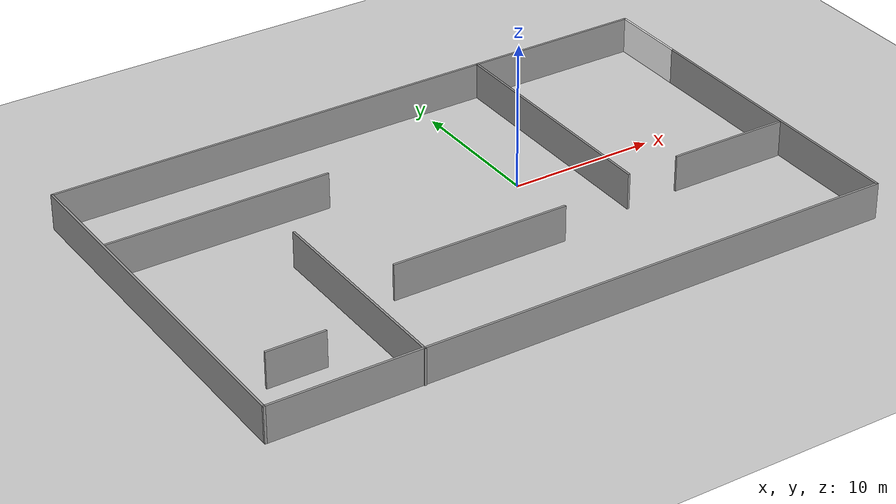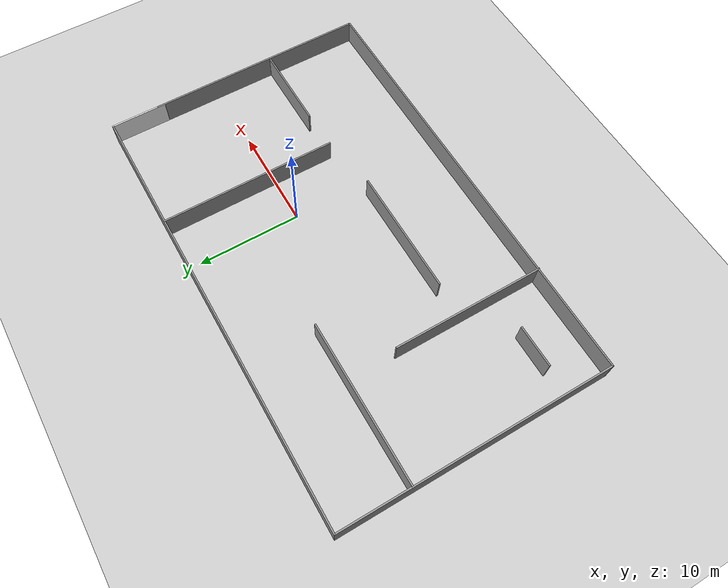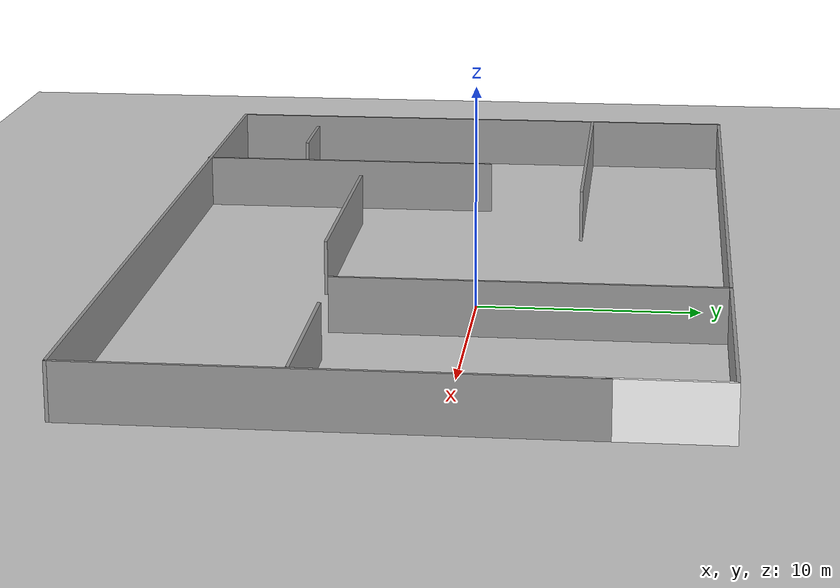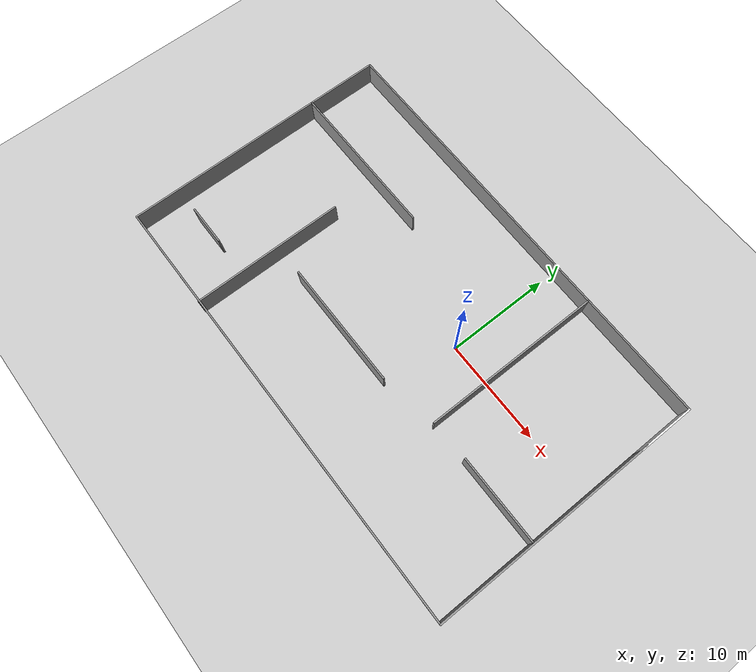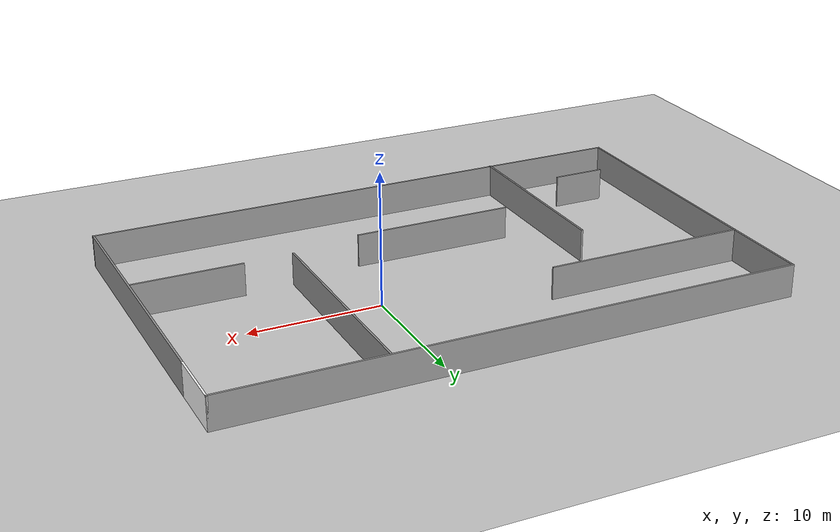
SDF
<sdf version="1.7">
 <world name="default">
  <model name="ground_plane">
   <static>1</static>
   <link name="link">
    <collision name="collision">
     <geometry><plane><normal>0 0 1</normal><size>100 100</size></plane></geometry>
     <surface><friction><ode><mu>100</mu><mu2>50</mu2></ode></friction></surface>
    </collision>
    <visual name="visual">
     <cast_shadows>0</cast_shadows>
     <geometry><plane><normal>0 0 1</normal><size>100 100</size></plane></geometry>
     <material>
      <script><uri>file://media/materials/scripts/gazebo.material</uri><name>Gazebo/Grey</name></script>
     </material>
    </visual>
   </link>
  </model>
  <light name="sun" type="directional">
   <pose>0 0 10 0 -0 0</pose>
   <diffuse>0.8 0.8 0.8 1</diffuse>
   <specular>0.2 0.2 0.2 1</specular>
   <attenuation>
    <range>1000</range>
    <constant>0.9</constant>
    <linear>0.01</linear>
    <quadratic>0.001</quadratic>
   </attenuation>
   <direction>-0.5 0.1 -0.9</direction>
   <spot><inner_angle>0</inner_angle><outer_angle>0</outer_angle><falloff>0</falloff></spot>
  </light>
  <scene><shadows>0</shadows><ambient>0.4 0.4 0.4 1</ambient><background>0.7 0.7 0.7 1</background></scene>
  <physics type="ode">
   <real_time_update_rate>1000</real_time_update_rate>
   <max_step_size>0.001</max_step_size>
   <real_time_factor>1</real_time_factor>
   <ode>
    <solver>
     <type>quick</type>
     <iters>150</iters>
     <precon_iters>0</precon_iters>
     <sor>1.4</sor>
     <use_dynamic_moi_rescaling>1</use_dynamic_moi_rescaling>
    </solver>
    <constraints>
     <cfm>1e-05</cfm>
     <erp>0.2</erp>
     <contact_max_correcting_vel>2000</contact_max_correcting_vel>
     <contact_surface_layer>0.01</contact_surface_layer>
    </constraints>
   </ode>
  </physics>
  <model name="amr_mini_world">
   <static>1</static>
   <frame name="world::__model__" attached_to="world::Wall_10">
    <pose relative_to="__model__">-5.16979 -2.04651 0 0 -0 0</pose>
   </frame>
   <link name="world::Wall_10">
    <collision name="Wall_10_Collision">
     <geometry><box><size>15.5 0.15 2.5</size></box></geometry>
     <pose>0 0 1.25 0 -0 0</pose>
    </collision>
    <visual name="Wall_10_Visual">
     <pose>0 0 1.25 0 -0 0</pose>
     <geometry><box><size>15.5 0.15 2.5</size></box></geometry>
     <material>
      <script><uri>file://media/materials/scripts/gazebo.material</uri><name>Gazebo/Grey</name></script>
      <ambient>1 1 1 1</ambient>
     </material>
     <meta><layer>0</layer></meta>
    </visual>
    <pose relative_to="world::__model__">-13.8371 6.2765 0 0 -0 0</pose>
   </link>
   <link name="world::Wall_12">
    <collision name="Wall_12_Collision">
     <geometry><box><size>14.75 0.15 2.5</size></box></geometry>
     <pose>0 0 1.25 0 -0 0</pose>
    </collision>
    <visual name="Wall_12_Visual">
     <pose>0 0 1.25 0 -0 0</pose>
     <geometry><box><size>14.75 0.15 2.5</size></box></geometry>
     <material>
      <script><uri>file://media/materials/scripts/gazebo.material</uri><name>Gazebo/Grey</name></script>
      <ambient>1 1 1 1</ambient>
     </material>
     <meta><layer>0</layer></meta>
    </visual>
    <pose relative_to="world::__model__">-11.3173 -5.90286 0 0 -0 1.5708</pose>
   </link>
   <link name="world::Wall_14">
    <collision name="Wall_14_Collision">
     <geometry><box><size>17.25 0.15 2.5</size></box></geometry>
     <pose>0 0 1.25 0 -0 0</pose>
    </collision>
    <visual name="Wall_14_Visual">
     <pose>0 0 1.25 0 -0 0</pose>
     <geometry><box><size>17.25 0.15 2.5</size></box></geometry>
     <material>
      <script><uri>file://media/materials/scripts/gazebo.material</uri><name>Gazebo/Grey</name></script>
      <ambient>1 1 1 1</ambient>
     </material>
     <meta><layer>0</layer></meta>
    </visual>
    <pose relative_to="world::__model__">9.43644 4.6444 0 0 -0 -1.5708</pose>
   </link>
   <link name="world::Wall_16">
    <collision name="Wall_16_Collision">
     <geometry><box><size>8.25 0.15 2.5</size></box></geometry>
     <pose>0 0 1.25 0 -0 0</pose>
    </collision>
    <visual name="Wall_16_Visual">
     <pose>0 0 1.25 0 -0 0</pose>
     <geometry><box><size>8.25 0.15 2.5</size></box></geometry>
     <material>
      <script><uri>file://media/materials/scripts/gazebo.material</uri><name>Gazebo/Grey</name></script>
      <ambient>1 1 1 1</ambient>
     </material>
     <meta><layer>0</layer></meta>
    </visual>
    <pose relative_to="world::__model__">17.3095 -3.79694 0 0 -0 0</pose>
   </link>
   <link name="world::Wall_18">
    <collision name="Wall_18_Collision">
     <geometry><box><size>12.25 0.15 2.5</size></box></geometry>
     <pose>0 0 1.25 0 -0 0</pose>
    </collision>
    <visual name="Wall_18_Visual">
     <pose>0 0 1.25 0 -0 0</pose>
     <geometry><box><size>12.25 0.15 2.5</size></box></geometry>
     <material>
      <script><uri>file://media/materials/scripts/gazebo.material</uri><name>Gazebo/Grey</name></script>
      <ambient>1 1 1 1</ambient>
     </material>
     <meta><layer>0</layer></meta>
    </visual>
    <pose relative_to="world::__model__">-2.12463 -4.88283 0 0 -0 0</pose>
   </link>
   <link name="world::Wall_20">
    <collision name="Wall_20_Collision">
     <geometry><box><size>4 0.15 2.5</size></box></geometry>
     <pose>0 0 1.25 0 -0 0</pose>
    </collision>
    <visual name="Wall_20_Visual">
     <pose>0 0 1.25 0 -0 0</pose>
     <geometry><box><size>4 0.15 2.5</size></box></geometry>
     <material>
      <script><uri>file://media/materials/scripts/gazebo.material</uri><name>Gazebo/Grey</name></script>
      <ambient>1 1 1 1</ambient>
     </material>
     <meta><layer>0</layer></meta>
    </visual>
    <pose relative_to="world::__model__">-16.9906 -8.66657 0 0 -0 0</pose>
   </link>
   <link name="world::Wall_4">
    <collision name="Wall_4_Collision">
     <geometry><box><size>21.75 0.15 2.5</size></box></geometry>
     <pose>0 0 1.25 0 -0 0</pose>
    </collision>
    <visual name="Wall_4_Visual">
     <pose>0 0 1.25 0 -0 0</pose>
     <geometry><box><size>21.75 0.15 2.5</size></box></geometry>
     <material>
      <script><uri>file://media/materials/scripts/gazebo.material</uri><name>Gazebo/Grey</name></script>
      <ambient>1 1 1 1</ambient>
     </material>
     <meta><layer>0</layer></meta>
    </visual>
    <pose relative_to="world::__model__">21.55 -2.34714 0 0 -0 -1.5708</pose>
   </link>
   <link name="world::Wall_5">
    <collision name="Wall_5_Collision">
     <geometry><box><size>43.25 0.15 2.5</size></box></geometry>
     <pose>0 0 1.25 0 -0 0</pose>
    </collision>
    <visual name="Wall_5_Visual">
     <pose>0 0 1.25 0 -0 0</pose>
     <geometry><box><size>43.25 0.15 2.5</size></box></geometry>
     <material>
      <script><uri>file://media/materials/scripts/gazebo.material</uri><name>Gazebo/Grey</name></script>
      <ambient>1 1 1 1</ambient>
     </material>
     <meta><layer>0</layer></meta>
    </visual>
    <pose relative_to="world::__model__">0 -13.1471 0 0 -0 3.14159</pose>
   </link>
   <link name="world::Wall_6">
    <collision name="Wall_6_Collision">
     <geometry><box><size>26.5 0.15 2.5</size></box></geometry>
     <pose>0 0 1.25 0 -0 0</pose>
    </collision>
    <visual name="Wall_6_Visual">
     <pose>0 0 1.25 0 -0 0</pose>
     <geometry><box><size>26.5 0.15 2.5</size></box></geometry>
     <material>
      <script><uri>file://media/materials/scripts/gazebo.material</uri><name>Gazebo/Grey</name></script>
      <ambient>1 1 1 1</ambient>
     </material>
     <meta><layer>0</layer></meta>
    </visual>
    <pose relative_to="world::__model__">-21.55 0.027863 0 0 -0 1.5708</pose>
   </link>
   <link name="world::Wall_7">
    <collision name="Wall_7_Collision">
     <geometry><box><size>43.25 0.15 2.5</size></box></geometry>
     <pose>0 0 1.25 0 -0 0</pose>
    </collision>
    <visual name="Wall_7_Visual">
     <pose>0 0 1.25 0 -0 0</pose>
     <geometry><box><size>43.25 0.15 2.5</size></box></geometry>
     <material>
      <script><uri>file://media/materials/scripts/gazebo.material</uri><name>Gazebo/Grey</name></script>
      <ambient>1 1 1 1</ambient>
     </material>
     <meta><layer>0</layer></meta>
    </visual>
    <pose relative_to="world::__model__">0 13.2029 0 0 -0 0</pose>
   </link>
   <link name="world::Wall_8">
    <collision name="Wall_8_Collision">
     <geometry><box><size>5.5 0.15 2.5</size></box></geometry>
     <pose>0 0 1.25 0 -0 0</pose>
    </collision>
    <visual name="Wall_8_Visual">
     <pose>0 0 1.25 0 -0 0</pose>
     <geometry><box><size>5.5 0.15 2.5</size></box></geometry>
     <material>
      <script><uri>file://media/materials/scripts/gazebo.material</uri><name>__default__</name></script>
      <ambient>1 1 1 1</ambient>
     </material>
     <meta><layer>0</layer></meta>
    </visual>
    <pose relative_to="world::__model__">21.55 10.5279 0 0 -0 -1.5708</pose>
   </link>
   <static>1</static>
  </model>
  <gravity>0 0 -9.8</gravity>
  <magnetic_field>6e-06 2.3e-05 -4.2e-05</magnetic_field>
  <atmosphere type="adiabatic"/>
  <spherical_coordinates>
   <surface_model>EARTH_WGS84</surface_model>
   <latitude_deg>0</latitude_deg>
   <longitude_deg>0</longitude_deg>
   <elevation>0</elevation>
   <heading_deg>0</heading_deg>
  </spherical_coordinates>
 </world>
</sdf>
